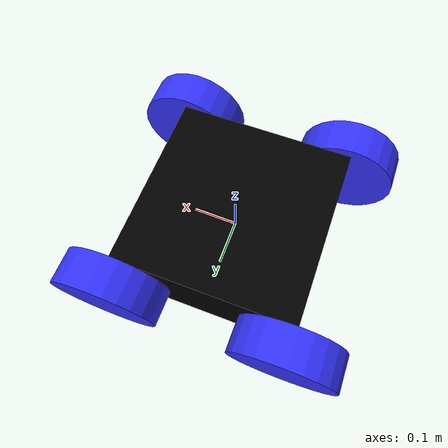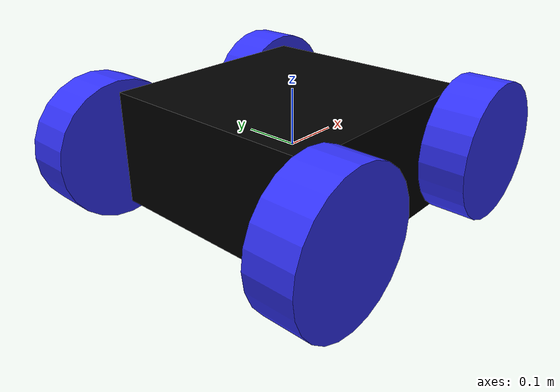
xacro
<?xml version="1.0"?>
<robot xmlns:xacro="http://www.ros.org/wiki/xacro">

    <!-- PROPERTIES -->

    <xacro:property name="pi" value="3.141592653589793"/>

    <!-- MATERIALS (Colors) -->

    <material name="black">
        <color rgba="0 0 0 1"/>
    </material>

    <material name="blue">
        <color rgba="0.2 0.2 1 1"/>
    </material>

    <!-- BASE LINK -->

    <link name="base_link">

    </link>

    <!-- CHASSIS LINK -->

    <joint name="chassis_joint" type="fixed">
        <parent link="base_link"/>
        <child link="chassis"/>
        <origin xyz="0 0 0"/>
    </joint>

    <link name="chassis">
        <inertial>
            <origin xyz="0 0 0" rpy="0 0 0"/>
                <mass value="1.0"/>
            <inertia ixx="0.0167" ixy="0.0" ixz="0.0" iyy="0.0167" iyz="0.0" izz="0.0267"/>
        </inertial>
        <visual>
            <origin xyz="0 0 0" rpy="0 0 0"/>
            <geometry>
                <box size="0.4 0.4 0.2"/>
            </geometry>
            <material name="black"/>
        </visual>
        <collision>
            <origin xyz="0 0 0" rpy="0 0 0"/>
            <geometry>
                <box size="0.4 0.4 0.2"/>
            </geometry>
        </collision>
    </link>

    <gazebo reference="chassis">
        <material>Gazebo/Black</material>
    </gazebo>

    <!-- FRONT LEFT WHEEL LINK -->

    <joint name="front_left_wheel_joint" type="continuous">
        <parent link="chassis"/>
        <child link="front_left_wheel"/>
        <origin xyz="0.2 0.24 0" rpy="${pi/2} 0 0"/>
        <axis xyz="0 0 1"/>
    </joint>

    <link name="front_left_wheel">
        <inertial>
        <origin xyz="0 0 0" rpy="0 0 0"/>
        <mass value="0.1"/>
        <inertia ixx="0.0057" ixy="0.0" ixz="0.0" iyy="0.0057" iyz="0.0" izz="0.00072"/>
        </inertial>
        <visual>
            <geometry>
                <cylinder radius="0.12" length="0.08"/>
            </geometry>
            <material name="blue"/>
        </visual>
        <collision>
        <origin xyz="0 0 0" rpy="0 0 0"/>
            <geometry>
                <cylinder radius="0.12" length="0.08"/>
            </geometry>
        </collision>
    </link>

    <gazebo reference="front_left_wheel">
        <material>Gazebo/Red</material>
        <mu1 value="0.001"/> <!-- PLACEHOLDER BEFORE ACKERMANN STEERING -->
        <mu2 value="0.001"/> <!-- PLACEHOLDER BEFORE ACKERMANN STEERING -->
    </gazebo>

    <!-- FRONT RIGHT WHEEL LINK -->

    <joint name="front_right_wheel_joint" type="continuous">
        <parent link="chassis"/>
        <child link="front_right_wheel"/>
        <origin xyz="0.2 -0.24 0" rpy="${pi/2} 0 0"/>
        <axis xyz="0 0 1"/>
    </joint>

    <link name="front_right_wheel">
        <inertial>
        <origin xyz="0 0 0" rpy="0 0 0"/>
        <mass value="0.1"/>
        <inertia ixx="0.0057" ixy="0.0" ixz="0.0" iyy="0.0057" iyz="0.0" izz="0.00072"/>
        </inertial>
        <visual>
            <geometry>
                <cylinder radius="0.12" length="0.08"/>
            </geometry>
            <material name="blue"/>
        </visual>
        <collision>
        <origin xyz="0 0 0" rpy="0 0 0"/>
            <geometry>
                <cylinder radius="0.12" length="0.08"/>
            </geometry>
        </collision>
    </link>

    <gazebo reference="front_right_wheel">
        <material>Gazebo/Red</material>
        <mu1 value="0.001"/> <!-- PLACEHOLDER BEFORE ACKERMANN STEERING -->
        <mu2 value="0.001"/> <!-- PLACEHOLDER BEFORE ACKERMANN STEERING -->
    </gazebo>

    <!-- BACK LEFT WHEEL LINK -->

    <joint name="back_left_wheel_joint" type="continuous">
        <parent link="chassis"/>
        <child link="back_left_wheel"/>
        <origin xyz="-0.2 0.24 0" rpy="${pi/2} 0 0"/>
        <axis xyz="0 0 -1"/>
    </joint>

    <link name="back_left_wheel">
        <inertial>
        <origin xyz="0 0 0" rpy="0 0 0"/>
        <mass value="0.1"/>
        <inertia ixx="0.0057" ixy="0.0" ixz="0.0" iyy="0.0057" iyz="0.0" izz="0.00072"/>
        </inertial>
        <visual>
            <geometry>
                <cylinder radius="0.12" length="0.08"/>
            </geometry>
            <material name="blue"/>
        </visual>
        <collision>
        <origin xyz="0 0 0" rpy="0 0 0"/>
            <geometry>
                <cylinder radius="0.12" length="0.08"/>
            </geometry>
        </collision>
    </link>

    <gazebo reference="back_left_wheel">
        <material>Gazebo/Blue</material>
    </gazebo>

    <!-- BACK RIGHT WHEEL LINK -->

    <joint name="back_right_wheel_joint" type="continuous">
        <parent link="chassis"/>
        <child link="back_right_wheel"/>
        <origin xyz="-0.2 -0.24 0" rpy="${pi/2} 0 0"/>
        <axis xyz="0 0 -1"/>
    </joint>

    <link name="back_right_wheel">
        <inertial>
        <origin xyz="0 0 0" rpy="0 0 0"/>
        <mass value="0.1"/>
        <inertia ixx="0.0057" ixy="0.0" ixz="0.0" iyy="0.0057" iyz="0.0" izz="0.00072"/>
        </inertial>
        <visual>
            <geometry>
                <cylinder radius="0.12" length="0.08"/>
            </geometry>
            <material name="blue"/>
        </visual>
        <collision>
        <origin xyz="0 0 0" rpy="0 0 0"/>
            <geometry>
                <cylinder radius="0.12" length="0.08"/>
            </geometry>
        </collision>
    </link>

    <gazebo reference="back_right_wheel">
        <material>Gazebo/Blue</material>
    </gazebo>

</robot>
